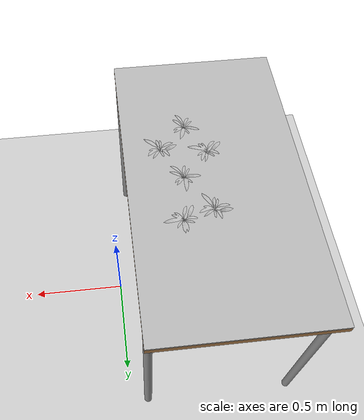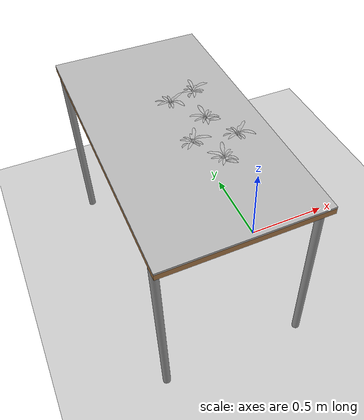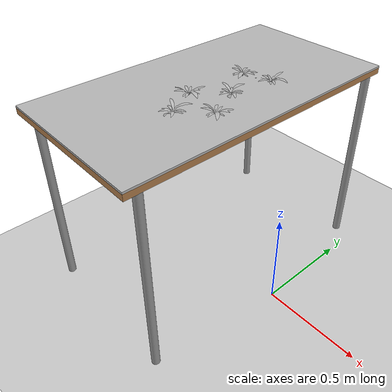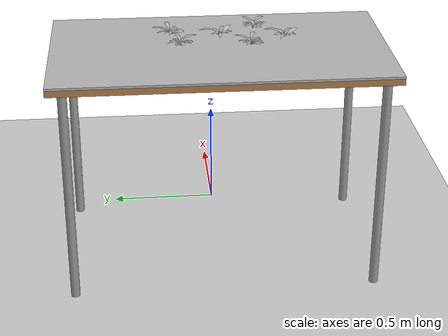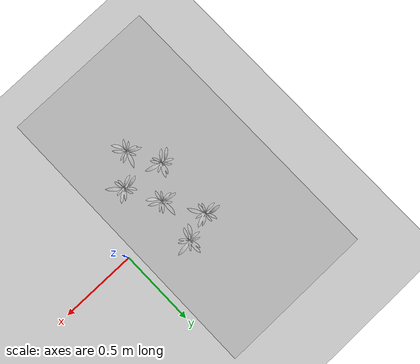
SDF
<sdf version="1.7">
 <world name="default">
  <light name="sun" type="directional">
   <pose>0 0 10 0 -0 0</pose>
   <diffuse>0.8 0.8 0.8 1</diffuse>
   <specular>0.2 0.2 0.2 1</specular>
   <attenuation>
    <range>1000</range>
    <constant>0.9</constant>
    <linear>0.01</linear>
    <quadratic>0.001</quadratic>
   </attenuation>
   <direction>-0.5 0.1 -0.9</direction>
   <spot><inner_angle>0</inner_angle><outer_angle>0</outer_angle><falloff>0</falloff></spot>
  </light>
  <model name="ground_plane">
   <static>1</static>
   <link name="link">
    <collision name="surface_collision">
     <geometry><plane><normal>0 0 1</normal><size>100 100</size></plane></geometry>
     <surface>
      <contact><collide_bitmask>65535</collide_bitmask></contact>
      <friction><ode><mu>100</mu><mu2>50</mu2></ode></friction>
     </surface>
    </collision>
    <visual name="surface_visual">
     <cast_shadows>0</cast_shadows>
     <geometry><plane><normal>0 0 1</normal><size>100 100</size></plane></geometry>
     <material>
      <script><uri>file://media/materials/scripts/gazebo.material</uri><name>Gazebo/Grey</name></script>
     </material>
    </visual>
   </link>
  </model>
  <gravity>0 0 -9.8</gravity>
  <magnetic_field>6e-06 2.3e-05 -4.2e-05</magnetic_field>
  <atmosphere type="adiabatic"/>
  <physics type="ode">
   <max_step_size>0.001</max_step_size>
   <real_time_factor>1</real_time_factor>
   <real_time_update_rate>1000</real_time_update_rate>
  </physics>
  <scene><ambient>0.4 0.4 0.4 1</ambient><background>0.7 0.7 0.7 1</background><shadows>1</shadows></scene>
  <spherical_coordinates>
   <surface_model>EARTH_WGS84</surface_model>
   <latitude_deg>0</latitude_deg>
   <longitude_deg>0</longitude_deg>
   <elevation>0</elevation>
   <heading_deg>0</heading_deg>
  </spherical_coordinates>
  <model name="table">
   <static>1</static>
   <link name="link">
    <collision name="surface_collision">
     <pose>0 0 1 0 -0 0</pose>
     <geometry><box><size>1.5 0.8 0.03</size></box></geometry>
     <surface><friction><ode><mu>0.6</mu><mu2>0.6</mu2></ode></friction></surface>
    </collision>
    <visual name="surface_visual">
     <pose>0 0 1 0 -0 0</pose>
     <geometry><box><size>1.5 0.8 0.03</size></box></geometry>
     <material>
      <script><uri>file://media/materials/scripts/gazebo.material</uri><name>Gazebo/Wood</name></script>
     </material>
    </visual>
    <collision name="front_left_leg_collision">
     <pose>0.68 0.38 0.5 0 -0 0</pose>
     <geometry><cylinder><radius>0.02</radius><length>1</length></cylinder></geometry>
    </collision>
    <visual name="front_left_leg_visual">
     <pose>0.68 0.38 0.5 0 -0 0</pose>
     <geometry><cylinder><radius>0.02</radius><length>1</length></cylinder></geometry>
     <material>
      <script><uri>file://media/materials/scripts/gazebo.material</uri><name>Gazebo/Grey</name></script>
     </material>
    </visual>
    <collision name="front_right_leg_collision">
     <pose>0.68 -0.38 0.5 0 -0 0</pose>
     <geometry><cylinder><radius>0.02</radius><length>1</length></cylinder></geometry>
    </collision>
    <visual name="front_right_leg_visual">
     <pose>0.68 -0.38 0.5 0 -0 0</pose>
     <geometry><cylinder><radius>0.02</radius><length>1</length></cylinder></geometry>
     <material>
      <script><uri>file://media/materials/scripts/gazebo.material</uri><name>Gazebo/Grey</name></script>
     </material>
    </visual>
    <collision name="back_right_leg_collision">
     <pose>-0.68 -0.38 0.5 0 -0 0</pose>
     <geometry><cylinder><radius>0.02</radius><length>1</length></cylinder></geometry>
    </collision>
    <visual name="back_right_leg_visual">
     <pose>-0.68 -0.38 0.5 0 -0 0</pose>
     <geometry><cylinder><radius>0.02</radius><length>1</length></cylinder></geometry>
     <material>
      <script><uri>file://media/materials/scripts/gazebo.material</uri><name>Gazebo/Grey</name></script>
     </material>
    </visual>
    <collision name="back_left_leg_collision">
     <pose>-0.68 0.38 0.5 0 -0 0</pose>
     <geometry><cylinder><radius>0.02</radius><length>1</length></cylinder></geometry>
    </collision>
    <visual name="back_left_leg_visual">
     <pose>-0.68 0.38 0.5 0 -0 0</pose>
     <geometry><cylinder><radius>0.02</radius><length>1</length></cylinder></geometry>
     <material>
      <script><uri>file://media/materials/scripts/gazebo.material</uri><name>Gazebo/Grey</name></script>
     </material>
    </visual>
   </link>
   <pose>-0.475 0 0 0 -0 1.57</pose>
  </model>
  <model name="grass">
   <static>1</static>
   <link name="link">
    <collision name="collision">
     <geometry><mesh><uri>model://grass/meshes/grass.obj</uri></mesh></geometry>
     <surface><friction><ode><mu>0.2</mu><mu2>0.2</mu2></ode></friction></surface>
    </collision>
    <inertial>
     <mass>1</mass>
     <inertia><ixx>1</ixx><ixy>0</ixy><ixz>0</ixz><iyy>1</iyy><iyz>0</iyz><izz>1</izz></inertia>
    </inertial>
    <visual name="visual_abcedf">
     <geometry><mesh><uri>model://grass/meshes/grass.obj</uri></mesh></geometry>
     <material>
      <script>
       <uri>model://grass/materials/scripts</uri>
       <uri>model://grass/materials/textures</uri>
       <name>grass/Diffuse</name>
      </script>
     </material>
    </visual>
   </link>
   <pose>-0.475 0 1.02 0 -0 1.57</pose>
  </model>
  <model name="unknown_weed">
   <static>1</static>
   <link name="link">
    <inertial>
     <mass>0.1</mass>
     <inertia>
      <ixx>6.58333e-05</ixx>
      <ixy>0</ixy>
      <ixz>0</ixz>
      <iyy>6.58333e-05</iyy>
      <iyz>0</iyz>
      <izz>0.000125</izz>
     </inertia>
     <pose>0 0 0.005 0 -0 0</pose>
    </inertial>
    <collision name="collision_leaves">
     <geometry><mesh><uri>model://unknown_weed/meshes/unknown_weed.dae</uri></mesh></geometry>
     <surface><friction><ode><mu>10</mu><mu2>10</mu2></ode></friction></surface>
    </collision>
    <collision name="collision_stem">
     <geometry><cylinder><radius>0.03</radius><length>0.005</length></cylinder></geometry>
     <surface><friction><ode><mu>10</mu><mu2>10</mu2></ode></friction></surface>
    </collision>
    <visual name="visual">
     <geometry><mesh><uri>model://unknown_weed/meshes/unknown_weed.dae</uri></mesh></geometry>
     <material>
      <script>
       <uri>model://unknown_weed/materials/scripts/</uri>
       <uri>model://unknown_weed/materials/textures/</uri>
       <name>unknown_weed_leaf</name>
      </script>
     </material>
    </visual>
   </link>
   <pose>-0.246118 -0.179992 1.02572 0 0 -0.842283</pose>
  </model>
  <model name="unknown_weed_0">
   <static>1</static>
   <link name="link">
    <inertial>
     <mass>0.1</mass>
     <inertia>
      <ixx>6.58333e-05</ixx>
      <ixy>0</ixy>
      <ixz>0</ixz>
      <iyy>6.58333e-05</iyy>
      <iyz>0</iyz>
      <izz>0.000125</izz>
     </inertia>
     <pose>0 0 0.005 0 -0 0</pose>
    </inertial>
    <collision name="collision_leaves">
     <geometry><mesh><uri>model://unknown_weed/meshes/unknown_weed.dae</uri></mesh></geometry>
     <surface><friction><ode><mu>10</mu><mu2>10</mu2></ode></friction></surface>
    </collision>
    <collision name="collision_stem">
     <geometry><cylinder><radius>0.03</radius><length>0.005</length></cylinder></geometry>
     <surface><friction><ode><mu>10</mu><mu2>10</mu2></ode></friction></surface>
    </collision>
    <visual name="visual">
     <geometry><mesh><uri>model://unknown_weed/meshes/unknown_weed.dae</uri></mesh></geometry>
     <material>
      <script>
       <uri>model://unknown_weed/materials/scripts/</uri>
       <uri>model://unknown_weed/materials/textures/</uri>
       <name>unknown_weed_leaf</name>
      </script>
     </material>
    </visual>
   </link>
   <pose>-0.30011 0.209697 1.02572 0 -0 0</pose>
  </model>
  <model name="unknown_weed_1">
   <static>1</static>
   <link name="link">
    <inertial>
     <mass>0.1</mass>
     <inertia>
      <ixx>6.58333e-05</ixx>
      <ixy>0</ixy>
      <ixz>0</ixz>
      <iyy>6.58333e-05</iyy>
      <iyz>0</iyz>
      <izz>0.000125</izz>
     </inertia>
     <pose>0 0 0.005 0 -0 0</pose>
    </inertial>
    <collision name="collision_leaves">
     <geometry><mesh><uri>model://unknown_weed/meshes/unknown_weed.dae</uri></mesh></geometry>
     <surface><friction><ode><mu>10</mu><mu2>10</mu2></ode></friction></surface>
    </collision>
    <collision name="collision_stem">
     <geometry><cylinder><radius>0.03</radius><length>0.005</length></cylinder></geometry>
     <surface><friction><ode><mu>10</mu><mu2>10</mu2></ode></friction></surface>
    </collision>
    <visual name="visual">
     <geometry><mesh><uri>model://unknown_weed/meshes/unknown_weed.dae</uri></mesh></geometry>
     <material>
      <script>
       <uri>model://unknown_weed/materials/scripts/</uri>
       <uri>model://unknown_weed/materials/textures/</uri>
       <name>unknown_weed_leaf</name>
      </script>
     </material>
    </visual>
   </link>
   <pose>-0.440653 0.168652 1.02572 0 0 -1.16593</pose>
  </model>
  <model name="unknown_weed_2">
   <static>1</static>
   <link name="link">
    <inertial>
     <mass>0.1</mass>
     <inertia>
      <ixx>6.58333e-05</ixx>
      <ixy>0</ixy>
      <ixz>0</ixz>
      <iyy>6.58333e-05</iyy>
      <iyz>0</iyz>
      <izz>0.000125</izz>
     </inertia>
     <pose>0 0 0.005 0 -0 0</pose>
    </inertial>
    <collision name="collision_leaves">
     <geometry><mesh><uri>model://unknown_weed/meshes/unknown_weed.dae</uri></mesh></geometry>
     <surface><friction><ode><mu>10</mu><mu2>10</mu2></ode></friction></surface>
    </collision>
    <collision name="collision_stem">
     <geometry><cylinder><radius>0.03</radius><length>0.005</length></cylinder></geometry>
     <surface><friction><ode><mu>10</mu><mu2>10</mu2></ode></friction></surface>
    </collision>
    <visual name="visual">
     <geometry><mesh><uri>model://unknown_weed/meshes/unknown_weed.dae</uri></mesh></geometry>
     <material>
      <script>
       <uri>model://unknown_weed/materials/scripts/</uri>
       <uri>model://unknown_weed/materials/textures/</uri>
       <name>unknown_weed_leaf</name>
      </script>
     </material>
    </visual>
   </link>
   <pose>-0.371991 -0.301496 1.02572 0 -0 1.09366</pose>
  </model>
  <model name="unknown_weed_3">
   <static>1</static>
   <link name="link">
    <inertial>
     <mass>0.1</mass>
     <inertia>
      <ixx>6.58333e-05</ixx>
      <ixy>0</ixy>
      <ixz>0</ixz>
      <iyy>6.58333e-05</iyy>
      <iyz>0</iyz>
      <izz>0.000125</izz>
     </inertia>
     <pose>0 0 0.005 0 -0 0</pose>
    </inertial>
    <collision name="collision_leaves">
     <geometry><mesh><uri>model://unknown_weed/meshes/unknown_weed.dae</uri></mesh></geometry>
     <surface><friction><ode><mu>10</mu><mu2>10</mu2></ode></friction></surface>
    </collision>
    <collision name="collision_stem">
     <geometry><cylinder><radius>0.03</radius><length>0.005</length></cylinder></geometry>
     <surface><friction><ode><mu>10</mu><mu2>10</mu2></ode></friction></surface>
    </collision>
    <visual name="visual">
     <geometry><mesh><uri>model://unknown_weed/meshes/unknown_weed.dae</uri></mesh></geometry>
     <material>
      <script>
       <uri>model://unknown_weed/materials/scripts/</uri>
       <uri>model://unknown_weed/materials/textures/</uri>
       <name>unknown_weed_leaf</name>
      </script>
     </material>
    </visual>
   </link>
   <pose>-0.456793 -0.146995 1.02572 0 0 -0.418856</pose>
  </model>
  <model name="unknown_weed_4">
   <static>1</static>
   <link name="link">
    <inertial>
     <mass>0.1</mass>
     <inertia>
      <ixx>6.58333e-05</ixx>
      <ixy>0</ixy>
      <ixz>0</ixz>
      <iyy>6.58333e-05</iyy>
      <iyz>0</iyz>
      <izz>0.000125</izz>
     </inertia>
     <pose>0 0 0.005 0 -0 0</pose>
    </inertial>
    <collision name="collision_leaves">
     <geometry><mesh><uri>model://unknown_weed/meshes/unknown_weed.dae</uri></mesh></geometry>
     <surface><friction><ode><mu>10</mu><mu2>10</mu2></ode></friction></surface>
    </collision>
    <collision name="collision_stem">
     <geometry><cylinder><radius>0.03</radius><length>0.005</length></cylinder></geometry>
     <surface><friction><ode><mu>10</mu><mu2>10</mu2></ode></friction></surface>
    </collision>
    <visual name="visual">
     <geometry><mesh><uri>model://unknown_weed/meshes/unknown_weed.dae</uri></mesh></geometry>
     <material>
      <script>
       <uri>model://unknown_weed/materials/scripts/</uri>
       <uri>model://unknown_weed/materials/textures/</uri>
       <name>unknown_weed_leaf</name>
      </script>
     </material>
    </visual>
   </link>
   <pose>-0.331228 -0.012312 1.02572 0 -0 1.41377</pose>
  </model>
 </world>
</sdf>
